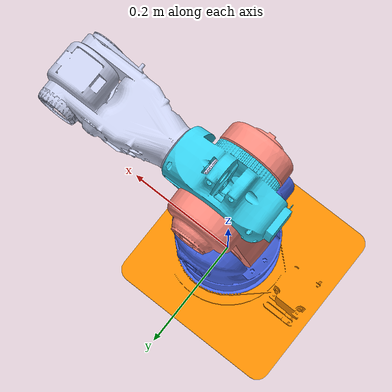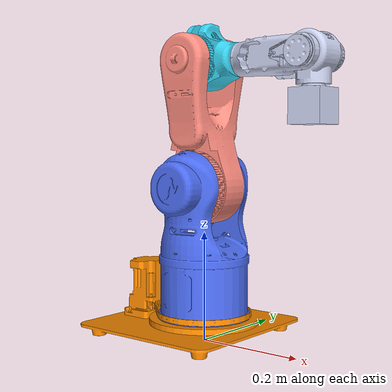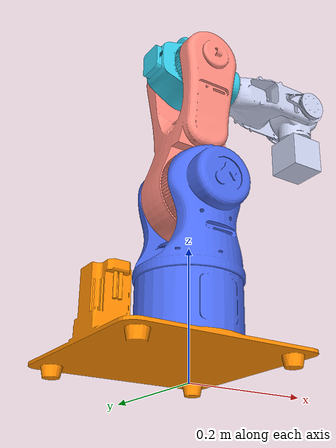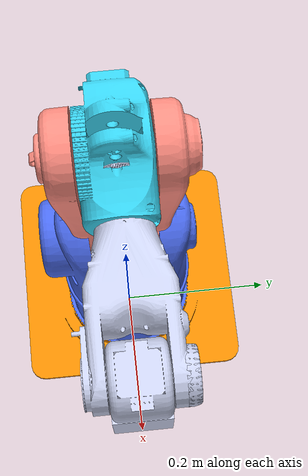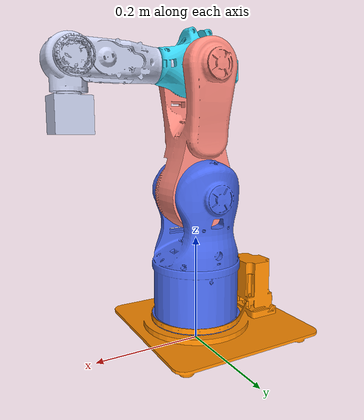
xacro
<?xml version="1.0"?>
<robot name="probot_anno" xmlns:xacro="http://ros.org/wiki/xacro">

  <xacro:property name="M_PI" value="3.141593"/>
  <link name="world" />

  <joint name="world_joint" type="fixed">
    <parent link="world" />
    <child link = "base_link" />
    <origin xyz="0 0 0.0315" rpy="0.0 0.0 0.0" />
  </joint>

  <link name="base_link">
    <inertial>
      <origin xyz="-0.010934 0.23134 0.0051509" rpy="0 0 0" />
      <mass value="0.1" />
      <inertia ixx="1" ixy="0" ixz="0" iyy="1" iyz="0" izz="1" />
    </inertial>
    <visual>
      <origin xyz="0.017266 0 0.0315" rpy="0 0 0" />
      <geometry>
        <mesh filename="package://probot_description/meshes/base_link.STL" />
      </geometry>
      <material name="">
        <color rgba="1.0  0.55 0.0 1.0"/>
      </material>
    </visual>
    <collision>
      <origin xyz="0.017266 0 0.0315" rpy="0 0 0" />
      <geometry>
        <mesh filename="package://probot_description/meshes/base_link.STL" />
      </geometry>
    </collision>
  </link>

  <link name="link_1">
    <inertial>
      <origin xyz="-0.010934 0.23134 0.0051509" rpy="0 0 0" />
      <mass value="0.001" />
      <inertia ixx="10" ixy="0.0" ixz="0.0" iyy="10" iyz="0.0" izz="10" />
    </inertial>
    <visual>
      <origin xyz="0 0.022 0" rpy="0 0 0" />
      <geometry>
        <mesh filename="package://probot_description/meshes/link_1.STL" />
      </geometry>
      <material name="">
        <color rgba="0.29216 0.41961 0.93333 1" />
      </material>
    </visual>
    <collision>
      <origin xyz="0 0 0" rpy="0 0 0" />
      <geometry>
        <mesh filename="package://probot_description/meshes/link_1.STL" />
      </geometry>
    </collision>
  </link>
  <joint name="joint_1" type="revolute">
    <origin xyz="0 0 0" rpy="1.5708 0 0" />
    <parent link="base_link" />
    <child link="link_1" />
    <axis xyz="0 1 0" />
    <limit lower="-3.1416" upper="3.1416" effort="100" velocity="3" />
  </joint>

  <link name="link_2">
    <inertial>
      <origin xyz="-0.010934 0.23134 0.0051509" rpy="0 0 0" />
      <mass value="0.001" />
      <inertia ixx="10" ixy="0.0" ixz="0.0" iyy="10" iyz="0.0" izz="10" />
    </inertial>
    <visual>
      <origin xyz="0 0 0" rpy="0 0 0" />
      <geometry>
        <mesh filename="package://probot_description/meshes/link_2.STL" />
      </geometry>
      <material name="">
        <color rgba="1.0  0.55 0.5 1.0" />
      </material>
    </visual>
    <collision>
      <origin xyz="0 0 0" rpy="0 0 0" />
      <geometry>
        <mesh filename="package://probot_description/meshes/link_2.STL" />
      </geometry>
    </collision>
  </link>
  <joint name="joint_2" type="revolute">
    <origin xyz="0 0.2525 0" rpy="0 0 0" />
    <parent link="link_1" />
    <child link="link_2" />
    <axis xyz="0 0 1" />
    <limit lower="-2.0071" upper="2.0071" effort="100" velocity="3" />
  </joint>

  <link name="link_3">
    <inertial>
      <origin xyz="-0.010934 0.23134 0.0051509" rpy="0 0 0" />
      <mass value="0.01" />
      <inertia ixx="100" ixy="0.0" ixz="0.0" iyy="100" iyz="0.0" izz="100" />
    </inertial>
    <visual>
      <origin xyz="0 0 0" rpy="0 0 0" />
      <geometry>
        <mesh filename="package://probot_description/meshes/link_3.STL" />
      </geometry>
      <material name="">
        <color rgba="0.216 0.81961 0.93333 1" />
      </material>
    </visual>
    <collision>
      <origin xyz="0 0 0" rpy="0 0 0" />
      <geometry>
        <mesh filename="package://probot_description/meshes/link_3.STL" />
      </geometry>
    </collision>
  </link>
  <joint name="joint_3" type="revolute">
    <origin xyz="0 0.225 0" rpy="0 0 0" />
    <parent link="link_2" />
    <child link="link_3" />
    <axis xyz="0 0 1" />
    <limit lower="-0.6981" upper="3.8397" effort="100" velocity="3" />
  </joint>

  <link name="link_4">
    <inertial>
      <origin xyz="-0.010934 0.23134 0.0051509" rpy="0 0 0" />
      <mass value="0.01" />
      <inertia ixx="100" ixy="0.0" ixz="0.0" iyy="100" iyz="0.0" izz="100" />
    </inertial>
    <visual>
      <origin xyz="0 0 0" rpy="0 0 0" />
      <geometry>
        <mesh filename="package://probot_description/meshes/link_4.STL" />
      </geometry>
      <material name="">
        <color rgba="0.79216 0.81961 0.93333 1" />
      </material>
    </visual>
    <collision>
      <origin xyz="0 0 0" rpy="0 0 0" />
      <geometry>
        <mesh filename="package://probot_description/meshes/link_4.STL" />
      </geometry>
    </collision>
  </link>
  <joint name="joint_4" type="revolute">
    <origin xyz="0.023 0 0.0" rpy="0 0 0" />
    <parent link="link_3" />
    <child link="link_4" />
    <axis xyz="1 0 0" />
    <limit lower="-3.1416" upper="3.1416" effort="100" velocity="3" />
  </joint>

  <link name="link_5">
    <inertial>
      <origin xyz="-0.010934 0.23134 0.0051509" rpy="0 0 0" />
      <mass value="0.01" />
      <inertia ixx="10" ixy="0.0" ixz="0.0" iyy="10" iyz="0.0" izz="10" />
    </inertial>
    <visual>
      <origin xyz="0 0 0" rpy="0 0 0" />
      <geometry>
        <mesh filename="package://probot_description/meshes/link_5.STL" />
      </geometry>
      <material name="">
        <color rgba="0.79216 0.81961 0.93333 1" />
      </material>
    </visual>
    <collision>
      <origin xyz="0 0 0" rpy="0 0 0" />
      <geometry>
        <mesh filename="package://probot_description/meshes/link_5.STL" />
      </geometry>
    </collision>
  </link>
  <joint name="joint_5" type="revolute">
    <origin xyz="0.20585535 0 0" rpy="0 0 0" />
    <parent link="link_4" />
    <child link="link_5" />
    <axis xyz="0 0 1" />
    <limit lower="-0.7854" upper="3.9270" effort="100" velocity="3" />
  </joint>

  <link name="link_6">
    <inertial>
      <origin xyz="-0.010934 0.23134 0.0051509" rpy="0 0 0" />
      <mass value="0.01" />
      <inertia ixx="10" ixy="0.0" ixz="0.0" iyy="10" iyz="0.0" izz="10" />
    </inertial>
    <visual>
      <origin xyz="0 0.013 0" rpy="0 0 0" />
      <geometry>
        <mesh filename="package://probot_description/meshes/link_6.STL" />
      </geometry>
      <material name="">
        <color rgba="0.79216 0.81961 0.93333 1" />
      </material>
    </visual>
    <collision>
      <origin xyz="0 0 0" rpy="0 0 0" />
      <geometry>
        <mesh filename="package://probot_description/meshes/link_6.STL" />
      </geometry>
    </collision>
  </link>
  <joint name="joint_6" type="revolute">
    <origin xyz="0 -0.055 0" rpy="0 0 0" />
    <parent link="link_5" />
    <child link="link_6" />
    <axis xyz="0 -1 0" />
    <limit lower="-3.1416" upper="3.1416" effort="100" velocity="3" />
  </joint>

  <link name="tool0"/>
  <joint name="joint_tool0" type="fixed">
    <origin xyz="0 -0.0 0" rpy="${M_PI/2} 0 0" />
    <parent link="link_6" />
    <child link="tool0" />
  </joint>

  <!-- Transmissions for ROS Control -->
  <xacro:macro name="transmission_block" params="joint_name">
    <transmission name="tran2">
      <type>transmission_interface/SimpleTransmission</type>
      <joint name="${joint_name}">
        <hardwareInterface>hardware_interface/PositionJointInterface</hardwareInterface>
      </joint>
      <actuator name="motor1">
        <hardwareInterface>hardware_interface/PositionJointInterface</hardwareInterface>
        <mechanicalReduction>1</mechanicalReduction>
      </actuator>
    </transmission>
  </xacro:macro>

  <xacro:transmission_block joint_name="joint_1"/>
  <xacro:transmission_block joint_name="joint_2"/>
  <xacro:transmission_block joint_name="joint_3"/>
  <xacro:transmission_block joint_name="joint_4"/>
  <xacro:transmission_block joint_name="joint_5"/>
  <xacro:transmission_block joint_name="joint_6"/>

  <!-- ros_control plugin -->
  <gazebo>
    <plugin name="gazebo_ros_control" filename="libgazebo_ros_control.so">
      <robotNamespace>/probot_anno</robotNamespace>
      <robotSimType>gazebo_ros_control/DefaultRobotHWSim</robotSimType>
      <legacyModeNS>true</legacyModeNS>
    </plugin>
  </gazebo>

</robot>
